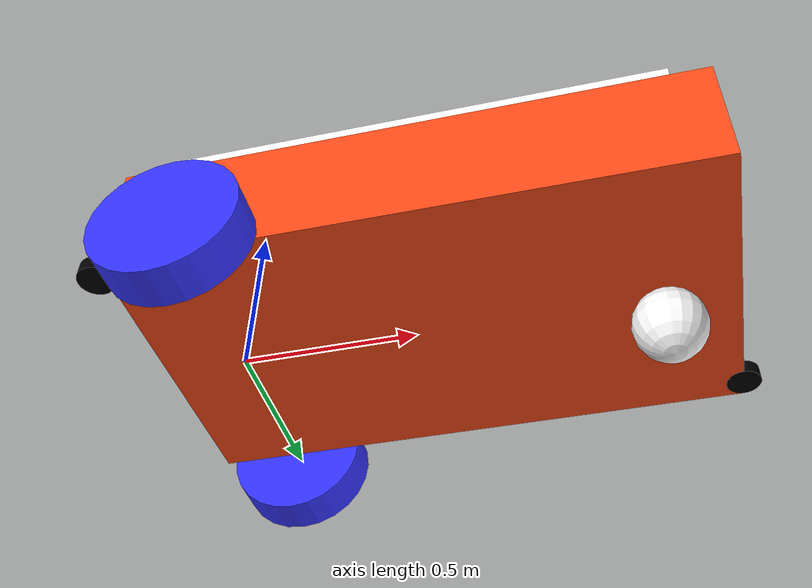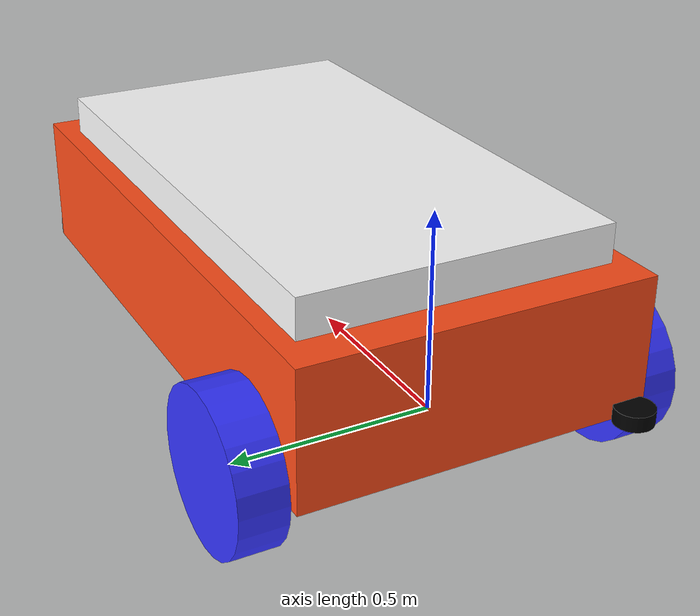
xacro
<?xml version="1.0"?>
<!--
    Forklift robot xacro file.
    This file loads all the necessary xacro urdf and sensors.
-->

<robot xmlns:xacro="http://www.ros.org/wiki/xacro" name="forklift">

    <xacro:arg name="sim_mode" default="true"/>

    <xacro:include filename="robot_core.xacro"/>
    <xacro:include filename="lidar.xacro"/>
    <xacro:include filename="camera.xacro"/>
    <xacro:include filename="gazebo_control.xacro"/>
    <xacro:include filename="gazebo_lidar.xacro"/>

</robot>

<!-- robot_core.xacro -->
<robot xmlns:xacro="http://www.ros.org/wiki/xacro">

    <!-- Add the inertial macros file here. -->
    <xacro:include filename="inertials_macros.xacro"/>

    <!-- Declare urdf properties here.-->

    <xacro:property name="chassis_length" value="1.6"/>
    <xacro:property name="chassis_width" value="0.9"/>
    <xacro:property name="chassis_height" value="0.35"/>
    <xacro:property name="wheel_offset_x" value="0.226"/>
    <xacro:property name="wheel_offset_y" value="0.51"/>
    <xacro:property name="wheel_offset_z" value="0.01"/>
    <xacro:property name="wheel_radius" value="0.2"/>
    <xacro:property name="wheel_thickness" value="0.12"/>
    <xacro:property name="chassis_mass" value="500"/>
    <xacro:property name="lift_link_mass" value="150"/>
    <xacro:property name="castor_wheel_mass" value="20"/>
    <xacro:property name="wheel_mass" value="40"/>
    <xacro:property name="caster_wheel_radius" value="0.10"/>
    <xacro:property name="caster_wheel_mass" value="20"/>
    <xacro:property name="caster_wheel_offset_x" value="1.4"/>
    <xacro:property name="caster_wheel_offset_z" value="-0.091"/>
    <xacro:property name="lift_length" value="1.4"/>
    <xacro:property name="lift_width" value="0.8"/>
    <xacro:property name="lift_height" value="0.1"/>
    <xacro:property name="lift_max_height" value="1.2"/>

    <!-- Define materials here.-->
    <material name="white">
        <color rgba="1.0 1.0 1.0 1.0"/>
    </material>

    <material name="orange">
        <color rgba="1 0.3 0.1 1"/>
    </material>

    <material name="blue">
        <color rgba="0.2 0.2 1 1"/>
    </material>

    <material name="black">
        <color rgba="0 0 0 1"/>
    </material>

    <material name="red">
        <color rgba="1 0 0 1"/>
    </material>

    <!-- BASE LINK -->
    <link name="base_link">
    </link>

    <!-- BASE FOOTPRINT LINK-->
    <link name="base_footprint">
    </link>

    <!-- CHASSIS LINK -->
    <link name="chassis">
        <visual>
            <origin xyz="${chassis_length/2} 0 ${chassis_height/2}"/>
            <geometry>
                <box size="${chassis_length} ${chassis_width} ${chassis_height}"/>
            </geometry>
            <material name="orange"/>
        </visual>
        <collision>
            <origin xyz="${chassis_length/2} 0 ${chassis_height/2}"/>
            <geometry>
                <box size="${chassis_length} ${chassis_width} ${chassis_height}"/>
            </geometry>
        </collision>
        <xacro:inertial_box mass="${chassis_mass}" x="${chassis_length}" y="${chassis_width}" z="${chassis_height}">
            <origin xyz="${chassis_length/2} 0 ${chassis_height/2}" rpy="0 0 0"/>
        </xacro:inertial_box>
    </link>

    <!-- LIFT LINK -->
    <link name="lift_link">
        <visual>
            <geometry>
                <box size="${lift_length} ${lift_width} ${lift_height}"/>
            </geometry>
            <material name="white"/>
        </visual>

        <collision>
            <geometry>
                <box size="${lift_length} ${lift_width} ${lift_height}"/>
            </geometry>
        </collision>

        <xacro:inertial_box mass="${lift_link_mass}" x="${lift_length}" y="${lift_width}" z="${lift_height}">
            <origin xyz="0 0 0" rpy="0 0 0"/>
        </xacro:inertial_box>
    </link>

    <!-- LEFT WHEEL LINK-->

    <link name="left_wheel">
        <visual>
            <geometry>
                <cylinder radius="${wheel_radius}" length="${wheel_thickness}"/>
            </geometry>
            <material name="blue"/>
        </visual>
        <collision>
            <geometry>
                <cylinder radius="${wheel_radius}" length="${wheel_thickness}"/>
            </geometry>
        </collision>
        <xacro:inertial_cylinder mass="${wheel_mass}" length="${wheel_thickness}" radius="${wheel_radius}">
            <origin xyz="0 0 0" rpy="0 0 0"/>
        </xacro:inertial_cylinder>
    </link>

    <!-- RIGHT WHEEL LINK -->

    <link name="right_wheel">
        <visual>
            <geometry>
                <cylinder radius="${wheel_radius}" length="${wheel_thickness}"/>
            </geometry>
            <material name="blue"/>
        </visual>
        <collision>
            <geometry>
                <cylinder radius="${wheel_radius}" length="${wheel_thickness}"/>
            </geometry>
        </collision>
        <xacro:inertial_cylinder mass="${wheel_mass}" length="${wheel_thickness}" radius="${wheel_radius}">
            <origin xyz="0 0 0" rpy="0 0 0"/>
        </xacro:inertial_cylinder>
    </link>

    <!-- CASTER WHEEL LINK -->

    <link name="caster_wheel">
        <visual>
            <geometry>
                <sphere radius="${caster_wheel_radius}"/>
            </geometry>
            <material name="white"/>
        </visual>
        <collision>
            <geometry>
                <sphere radius="${caster_wheel_radius}"/>
            </geometry>
        </collision>
        <xacro:inertial_sphere mass="${caster_wheel_mass}" radius="${caster_wheel_radius}">
            <origin xyz="0 0 0" rpy="0 0 0"/>
        </xacro:inertial_sphere>
    </link>

    <!-- JOINTS -->

    <!-- BASE_FOOTPRINT JOINT-->
    <joint name="base_footprint_joint" type="fixed">
        <parent link="base_footprint"/>
        <child link="base_link"/>
        <origin xyz="0.0 0.0 0.0" rpy="0.0 0.0 0.0"/>
    </joint>

    <!-- CHASSIS_JOINT-->
    <joint name="chasis_joint" type="fixed">
        <parent link="base_link"/>
        <child link="chassis"/>
        <origin xyz="${-wheel_offset_x} 0 ${-wheel_offset_z}"/>
    </joint>

    <!-- LIFT JOINT -->
    <joint name="lift_joint" type="prismatic">
        <parent link="chassis"/>
        <child link="lift_link"/>
        <!-- Position at the top of the chassis -->
        <origin xyz="${chassis_length/2} 0 ${chassis_height + lift_height/2}" rpy="0 0 0"/>
        <!-- Vertical movement (z-axis) -->
        <axis xyz="0 0 1"/>
        <limit lower="0.0" upper="${lift_max_height}" effort="5000" velocity="0.2"/>
    </joint>

    <!-- RIGHT_WHEEL_JOINT-->
    <joint name="right_wheel_joint" type="continuous">
        <parent link="base_link"/>
        <child link="right_wheel"/>
        <origin xyz="0 ${-wheel_offset_y} 0" rpy="${pi/2} 0 0" />
        <axis xyz="0 0 -1"/>
    </joint>

    <!-- LEFT_WHEEL_JOINT-->
    <joint name="left_wheel_joint" type="continuous">
        <parent link="base_link"/>
        <child link="left_wheel"/>
        <origin xyz="0 ${wheel_offset_y} 0" rpy="-${pi/2} 0 0" />
        <axis xyz="0 0 1"/>
    </joint>

    <!-- CASTER_WHEEL_JOINT-->
    <joint name="caster_wheel_joint" type="fixed">
        <parent link="chassis"/>
        <child link="caster_wheel"/>
        <origin xyz="${caster_wheel_offset_x} 0 ${caster_wheel_offset_z}"/>
    </joint>

</robot>

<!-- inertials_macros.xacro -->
<robot xmlns:xacro="http://www.ros.org/wiki/xacro">

    <!-- Specify some standard inertial calculations https://en.wikipedia.org/wiki/List_of_moments_of_inertia-->

    <xacro:macro name="inertial_sphere" params="mass radius *origin">
        <inertial>
            <xacro:insert_block name="origin"/>
            <mass value="${mass}"/>
            <inertia ixx="${(2/5) * mass * (radius * radius)}"
                ixy="0.0"
                ixz="0.0"
                iyy="0.0"
                iyz="0.0"
                izz="0.0"/>
        </inertial>
    </xacro:macro>

    <xacro:macro name="inertial_box" params="mass x y z *origin">
        <inertial>
            <xacro:insert_block name="origin"/>
            <mass value="${mass}"/>
            <inertia ixx="${(1/12) * mass * (y*y+z*z)}"
                ixy="0.0"
                ixz="0.0"
                iyy="${(1/12) * mass * (x*x+z*z)}"
                iyz="0.0"
                izz="${(1/12) * mass * (x*x+y*y)}"/>
        </inertial>
    </xacro:macro>

    <xacro:macro name="inertial_cylinder" params="mass length radius *origin">
        <inertial>
            <xacro:insert_block name="origin"/>
            <mass value="${mass}"/>
            <inertia ixx="${(1/12) * mass * (3*radius*radius + length*length)}"
                ixy="0.0"
                ixz="0.0"
                iyy="${(1/12) * mass * (3*radius*radius + length*length)}"
                iyz="0.0"
                izz="${(1/2) * mass * (radius*radius)}"/>
        </inertial>
    </xacro:macro>
</robot>

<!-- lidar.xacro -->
<robot xmlns:xacro="http://www.ros.org/wiki/xacro">

    <!-- LIDAR JOINT 1-->
    <joint name="right_laser_joint" type="fixed">
        <parent link="chassis"/>
        <child link="right_laser_link"/>
        <origin xyz="-0.03 -0.40 0.02" rpy="0 0 0"/>
    </joint>

    <!-- LIDAR JOINT 2-->
    <joint name="left_laser_joint" type="fixed">
        <parent link="chassis"/>
        <child link="left_laser_link"/>
        <origin xyz="1.6 0.40 0.02" rpy="0 0 0"/>
    </joint>

    <!-- LIDAR RIGHT LINK -->
    <link name="right_laser_link">
        <visual >
            <origin xyz="0.0 0.0 0.0" />
            <geometry>
                <cylinder radius="0.05" length="0.04"/>
            </geometry>
            <material name="black"/>
        </visual>
        <collision>
            <origin xyz="0.0 0.0 0.0" rpy="0.0 0.0 0.0"/>
            <geometry>
                <cylinder radius="0.05" length="0.04"/>
            </geometry>
        </collision>
        <xacro:inertial_cylinder mass="0.5" length="0.04" radius="0.05">
            <origin xyz="0 0 0" rpy="0 0 0"/>
        </xacro:inertial_cylinder>
    </link>

    <!-- LIDAR LEFT LINK -->
    <link name="left_laser_link">
        <visual >
            <origin xyz="0.0 0.0 0.0" />
            <geometry>
                <cylinder radius="0.05" length="0.04"/>
            </geometry>
            <material name="black"/>
        </visual>
        <collision>
            <origin xyz="0.0 0.0 0.0" rpy="0.0 0.0 0.0"/>
            <geometry>
                <cylinder radius="0.05" length="0.04"/>
            </geometry>
        </collision>
        <xacro:inertial_cylinder mass="0.5" length="0.04" radius="0.05">
            <origin xyz="0 0 0" rpy="0 0 0"/>
        </xacro:inertial_cylinder>
    </link>

</robot>

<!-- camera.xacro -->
<robot xmlns:xacro="http://www.ros.org/wiki/xacro">

    <xacro:property name="camera_length" value="0.010"/>
    <xacro:property name="camera_width" value="0.03"/>
    <xacro:property name="camera_height" value="0.03"/>
    <xacro:property name="camera_mass" value="0.3"/>

    <!-- CAMERA LINK-->
     <link name="camera_link">
        <visual>
            <origin xyz="0.0 0.0 0.0"/>
            <geometry>
                <box size="${camera_length} ${camera_width} ${camera_height}"/>
            </geometry>
            <material name="black"/>
        </visual>
        <collision>
            <geometry>
                <box size="${camera_length} ${camera_width} ${camera_height}"/>
            </geometry>
            <origin xyz="0.0 0.0 0.0"/>
        </collision>
        <xacro:inertial_box mass="${camera_mass}" x="${camera_length}" y="${chassis_width}" z="${chassis_height}">
            <origin xyz="0 0 0" rpy="0 0 0"/>
        </xacro:inertial_box>
     </link>

    <!-- OPTICAL LINK -->

    <!-- CAMERA JOINT -->
    <joint name="camera_joint" type="fixed">
        <parent link="chassis"/>
        <child link="camera_link"/>
        <origin xyz="${chassis_length+0.01} 0.0 ${chassis_height /2}" rpy="0.0 0.0 0.0"/>

    </joint>

</robot>
